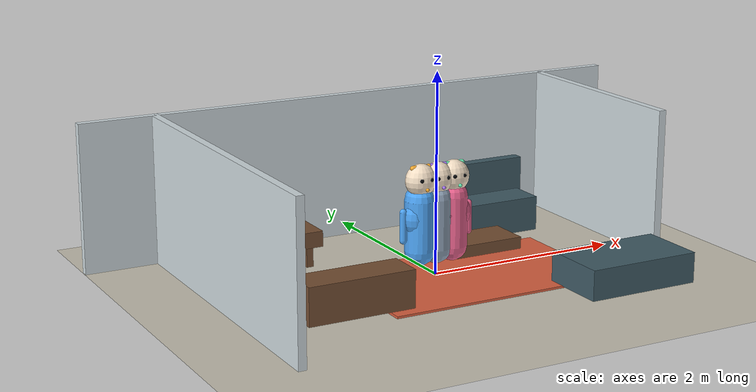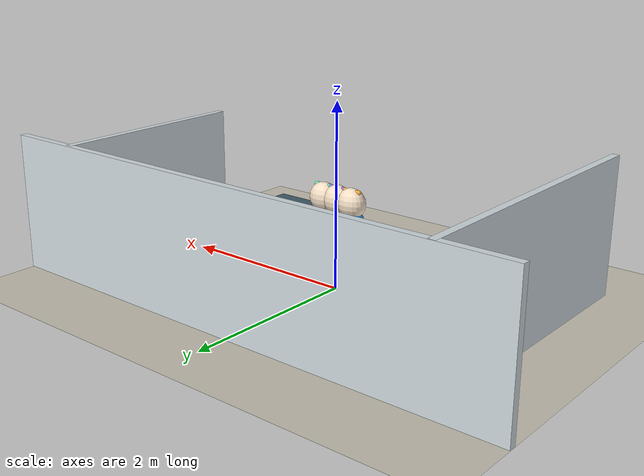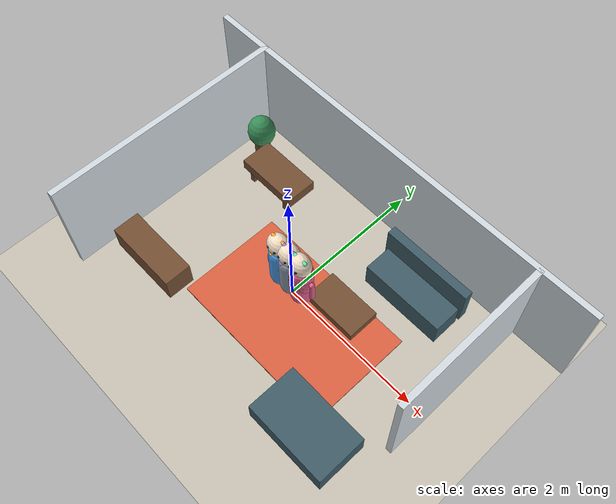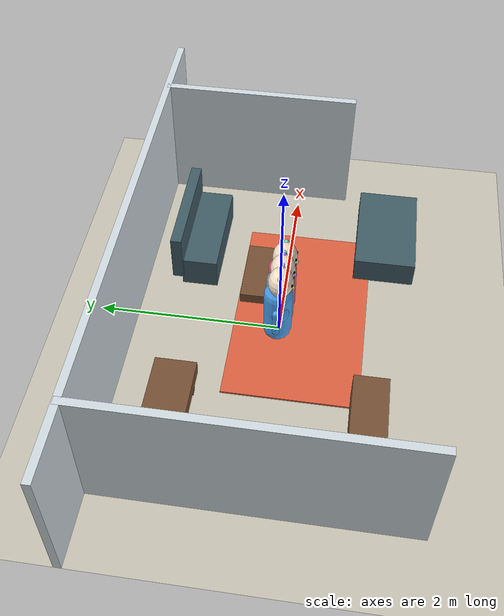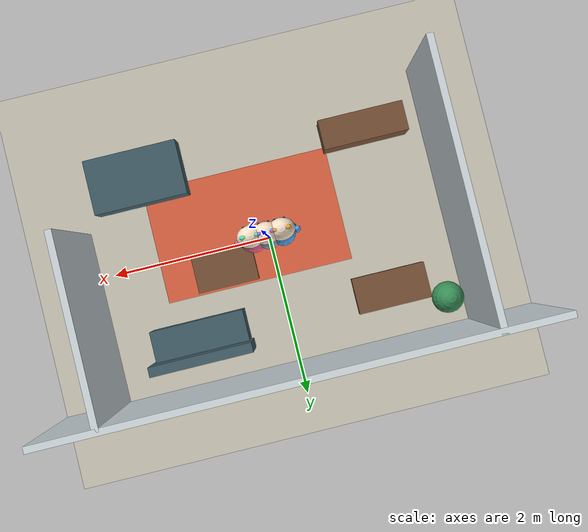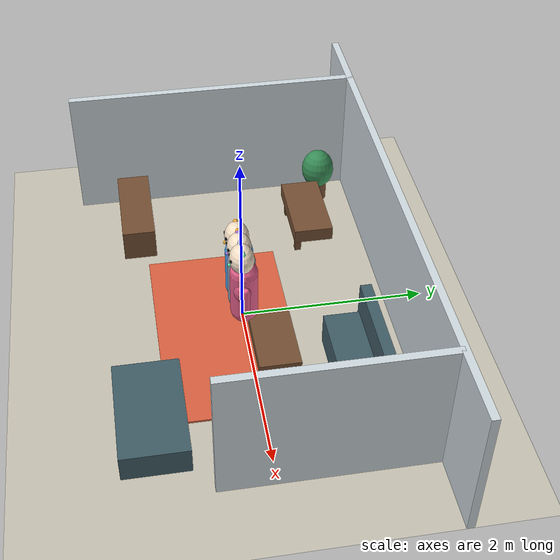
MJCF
<mujoco model="soulforge_sim_life_house">
  <compiler angle="radian" autolimits="true"/>
  <option timestep="0.01" gravity="0 0 -9.81"/>
  <visual>
    <global offwidth="1280" offheight="720"/>
    <headlight diffuse="0.72 0.70 0.66" ambient="0.28 0.30 0.34" specular="0.18 0.18 0.18"/>
    <rgba haze="0.90 0.94 0.98 1"/>
  </visual>
  <asset>
    <material name="floor_mat" rgba="0.78 0.76 0.70 1"/>
    <material name="wall_mat" rgba="0.82 0.86 0.88 1"/>
    <material name="wood_mat" rgba="0.46 0.31 0.20 1"/>
    <material name="sofa_mat" rgba="0.25 0.36 0.40 1"/>
    <material name="rug_mat" rgba="0.86 0.38 0.25 1"/>
    <material name="eye_mat" rgba="0.02 0.025 0.03 1"/>
    <material name="skin_mat" rgba="0.96 0.88 0.78 1"/>
    <material name="nova_body" rgba="0.300 0.640 0.950 1.000"/>
    <material name="nova_accent" rgba="0.980 0.680 0.200 1.000"/> <material name="mira_body" rgba="0.900 0.380 0.550 1.000"/>
    <material name="mira_accent" rgba="0.400 0.920 0.700 1.000"/> <material name="kite_body" rgba="0.550 0.620 0.700 1.000"/>
    <material name="kite_accent" rgba="0.650 0.460 0.950 1.000"/>
  </asset>
  <worldbody>
    <light name="window_key" pos="-2.8 -3.2 4.2" dir="0.8 1 -1.2" directional="true"/>
    <light name="ceiling_fill" pos="1.8 1.6 3.0" dir="-0.4 -0.2 -1" directional="true"/>
    <geom name="floor" type="plane" pos="0 0 0" size="3.0 2.5 0.02" material="floor_mat"/>
    <geom name="back_wall" type="box" pos="0 1.62 0.75" size="3.0 0.04 0.75" material="wall_mat"/>
    <geom name="left_wall" type="box" pos="-2.22 0 0.75" size="0.04 1.65 0.75" material="wall_mat"/>
    <geom name="right_low_wall" type="box" pos="2.22 0.52 0.75" size="0.04 1.10 0.75" material="wall_mat"/>
    <geom name="rug" type="box" pos="0.24 -0.22 0.012" size="1.18 0.72 0.012" material="rug_mat"/>
    <geom name="sofa_base" type="box" pos="1.10 0.98 0.18" size="0.58 0.20 0.18" material="sofa_mat"/>
    <geom name="sofa_back" type="box" pos="1.10 1.22 0.42" size="0.62 0.06 0.28" material="sofa_mat"/>
    <geom name="coffee_table" type="box" pos="0.62 0.25 0.16" size="0.38 0.22 0.06" material="wood_mat"/>
    <geom name="desk" type="box" pos="-1.30 0.96 0.28" size="0.45 0.22 0.08" material="wood_mat"/>
    <geom name="desk_leg_l" type="box" pos="-1.62 0.80 0.14" size="0.035 0.035 0.14" material="wood_mat"/>
    <geom name="desk_leg_r" type="box" pos="-0.98 0.80 0.14" size="0.035 0.035 0.14" material="wood_mat"/>
    <geom name="kitchen_counter" type="box" pos="-1.42 -1.02 0.36" size="0.52 0.18 0.18" material="wood_mat"/>
    <geom name="bed" type="box" pos="1.42 -1.10 0.17" size="0.58 0.34 0.15" material="sofa_mat"/>
    <geom name="plant_pot" type="cylinder" pos="-1.92 1.22 0.14" size="0.11 0.14" material="wood_mat"/>
    <geom name="plant_top" type="ellipsoid" pos="-1.92 1.22 0.42" size="0.19 0.19 0.24" rgba="0.22 0.56 0.34 1"/>

    <body name="nova_root" pos="-0.18 0 0.52">
      <inertial pos="0 0 0" mass="0.01" diaginertia="0.0001 0.0001 0.0001"/>
      <joint name="nova_x" type="slide" axis="1 0 0" range="-2.0 2.0" damping="10"/>
      <joint name="nova_y" type="slide" axis="0 1 0" range="-1.35 1.35" damping="10"/>
      <joint name="nova_heading" type="hinge" axis="0 0 1" range="-3.14159 3.14159" damping="5"/>
      <body name="nova_torso">
        <joint name="nova_body_yaw" type="hinge" axis="0 0 1" range="-0.35 0.35" damping="4"/>
        <joint name="nova_body_roll" type="hinge" axis="0 1 0" range="-0.26 0.26" damping="4"/>
        <geom name="nova_body_geom" type="capsule" fromto="0 0 -0.25 0 0 0.25" size="0.15" material="nova_body"/>
        <geom name="nova_chest" type="ellipsoid" pos="0 -0.02 0.08" size="0.18 0.12 0.20" material="nova_body"/>
        <body name="nova_left_arm" pos="-0.18 0 0.15">
          <joint name="nova_left_arm_pitch" type="hinge" axis="1 0 0" range="-0.35 1.40" damping="3"/>
          <geom type="capsule" fromto="0 0 0 0 0 -0.28" size="0.035" material="nova_body"/>
        </body>
        <body name="nova_right_arm" pos="0.18 0 0.15">
          <joint name="nova_right_arm_pitch" type="hinge" axis="1 0 0" range="-0.35 1.40" damping="3"/>
          <geom type="capsule" fromto="0 0 0 0 0 -0.28" size="0.035" material="nova_body"/>
        </body>
        <body name="nova_head_yaw_link" pos="0 0 0.33">
          <inertial pos="0 0 0" mass="0.01" diaginertia="0.0001 0.0001 0.0001"/>
          <joint name="nova_head_yaw" type="hinge" axis="0 0 1" range="-0.65 0.65" damping="4"/>
          <body name="nova_head_pitch_link">
            <inertial pos="0 0 0" mass="0.01" diaginertia="0.0001 0.0001 0.0001"/>
            <joint name="nova_head_pitch" type="hinge" axis="1 0 0" range="-0.42 0.42" damping="4"/>
            <body name="nova_head_roll_link">
              <joint name="nova_head_roll" type="hinge" axis="0 1 0" range="-0.28 0.28" damping="3"/>
              <geom name="nova_head" type="ellipsoid" pos="0 -0.02 0.12" size="0.16 0.13 0.16" material="skin_mat"/>
              <geom name="nova_left_eye" type="sphere" pos="-0.052 -0.132 0.142" size="0.020" material="eye_mat"/>
              <geom name="nova_right_eye" type="sphere" pos="0.052 -0.132 0.142" size="0.020" material="eye_mat"/>
              <geom name="nova_hair" type="capsule" fromto="-0.09 -0.02 0.245 0.09 -0.02 0.245" size="0.026" material="nova_accent"/>
              <geom name="nova_badge" type="sphere" pos="0 -0.148 0.052" size="0.018" material="nova_accent"/>
            </body>
          </body>
        </body>
      </body>
    </body>

    <body name="mira_root" pos="0.18 0 0.52">
      <inertial pos="0 0 0" mass="0.01" diaginertia="0.0001 0.0001 0.0001"/>
      <joint name="mira_x" type="slide" axis="1 0 0" range="-2.0 2.0" damping="10"/>
      <joint name="mira_y" type="slide" axis="0 1 0" range="-1.35 1.35" damping="10"/>
      <joint name="mira_heading" type="hinge" axis="0 0 1" range="-3.14159 3.14159" damping="5"/>
      <body name="mira_torso">
        <joint name="mira_body_yaw" type="hinge" axis="0 0 1" range="-0.35 0.35" damping="4"/>
        <joint name="mira_body_roll" type="hinge" axis="0 1 0" range="-0.26 0.26" damping="4"/>
        <geom name="mira_body_geom" type="capsule" fromto="0 0 -0.25 0 0 0.25" size="0.15" material="mira_body"/>
        <geom name="mira_chest" type="ellipsoid" pos="0 -0.02 0.08" size="0.18 0.12 0.20" material="mira_body"/>
        <body name="mira_left_arm" pos="-0.18 0 0.15">
          <joint name="mira_left_arm_pitch" type="hinge" axis="1 0 0" range="-0.35 1.40" damping="3"/>
          <geom type="capsule" fromto="0 0 0 0 0 -0.28" size="0.035" material="mira_body"/>
        </body>
        <body name="mira_right_arm" pos="0.18 0 0.15">
          <joint name="mira_right_arm_pitch" type="hinge" axis="1 0 0" range="-0.35 1.40" damping="3"/>
          <geom type="capsule" fromto="0 0 0 0 0 -0.28" size="0.035" material="mira_body"/>
        </body>
        <body name="mira_head_yaw_link" pos="0 0 0.33">
          <inertial pos="0 0 0" mass="0.01" diaginertia="0.0001 0.0001 0.0001"/>
          <joint name="mira_head_yaw" type="hinge" axis="0 0 1" range="-0.65 0.65" damping="4"/>
          <body name="mira_head_pitch_link">
            <inertial pos="0 0 0" mass="0.01" diaginertia="0.0001 0.0001 0.0001"/>
            <joint name="mira_head_pitch" type="hinge" axis="1 0 0" range="-0.42 0.42" damping="4"/>
            <body name="mira_head_roll_link">
              <joint name="mira_head_roll" type="hinge" axis="0 1 0" range="-0.28 0.28" damping="3"/>
              <geom name="mira_head" type="ellipsoid" pos="0 -0.02 0.12" size="0.16 0.13 0.16" material="skin_mat"/>
              <geom name="mira_left_eye" type="sphere" pos="-0.052 -0.132 0.142" size="0.020" material="eye_mat"/>
              <geom name="mira_right_eye" type="sphere" pos="0.052 -0.132 0.142" size="0.020" material="eye_mat"/>
              <geom name="mira_hair" type="capsule" fromto="-0.09 -0.02 0.245 0.09 -0.02 0.245" size="0.026" material="mira_accent"/>
              <geom name="mira_badge" type="sphere" pos="0 -0.148 0.052" size="0.018" material="mira_accent"/>
            </body>
          </body>
        </body>
      </body>
    </body>

    <body name="kite_root" pos="0.0 0 0.52">
      <inertial pos="0 0 0" mass="0.01" diaginertia="0.0001 0.0001 0.0001"/>
      <joint name="kite_x" type="slide" axis="1 0 0" range="-2.0 2.0" damping="10"/>
      <joint name="kite_y" type="slide" axis="0 1 0" range="-1.35 1.35" damping="10"/>
      <joint name="kite_heading" type="hinge" axis="0 0 1" range="-3.14159 3.14159" damping="5"/>
      <body name="kite_torso">
        <joint name="kite_body_yaw" type="hinge" axis="0 0 1" range="-0.35 0.35" damping="4"/>
        <joint name="kite_body_roll" type="hinge" axis="0 1 0" range="-0.26 0.26" damping="4"/>
        <geom name="kite_body_geom" type="capsule" fromto="0 0 -0.25 0 0 0.25" size="0.15" material="kite_body"/>
        <geom name="kite_chest" type="ellipsoid" pos="0 -0.02 0.08" size="0.18 0.12 0.20" material="kite_body"/>
        <body name="kite_left_arm" pos="-0.18 0 0.15">
          <joint name="kite_left_arm_pitch" type="hinge" axis="1 0 0" range="-0.35 1.40" damping="3"/>
          <geom type="capsule" fromto="0 0 0 0 0 -0.28" size="0.035" material="kite_body"/>
        </body>
        <body name="kite_right_arm" pos="0.18 0 0.15">
          <joint name="kite_right_arm_pitch" type="hinge" axis="1 0 0" range="-0.35 1.40" damping="3"/>
          <geom type="capsule" fromto="0 0 0 0 0 -0.28" size="0.035" material="kite_body"/>
        </body>
        <body name="kite_head_yaw_link" pos="0 0 0.33">
          <inertial pos="0 0 0" mass="0.01" diaginertia="0.0001 0.0001 0.0001"/>
          <joint name="kite_head_yaw" type="hinge" axis="0 0 1" range="-0.65 0.65" damping="4"/>
          <body name="kite_head_pitch_link">
            <inertial pos="0 0 0" mass="0.01" diaginertia="0.0001 0.0001 0.0001"/>
            <joint name="kite_head_pitch" type="hinge" axis="1 0 0" range="-0.42 0.42" damping="4"/>
            <body name="kite_head_roll_link">
              <joint name="kite_head_roll" type="hinge" axis="0 1 0" range="-0.28 0.28" damping="3"/>
              <geom name="kite_head" type="ellipsoid" pos="0 -0.02 0.12" size="0.16 0.13 0.16" material="skin_mat"/>
              <geom name="kite_left_eye" type="sphere" pos="-0.052 -0.132 0.142" size="0.020" material="eye_mat"/>
              <geom name="kite_right_eye" type="sphere" pos="0.052 -0.132 0.142" size="0.020" material="eye_mat"/>
              <geom name="kite_hair" type="capsule" fromto="-0.09 -0.02 0.245 0.09 -0.02 0.245" size="0.026" material="kite_accent"/>
              <geom name="kite_badge" type="sphere" pos="0 -0.148 0.052" size="0.018" material="kite_accent"/>
            </body>
          </body>
        </body>
      </body>
    </body>

  </worldbody>
</mujoco>
